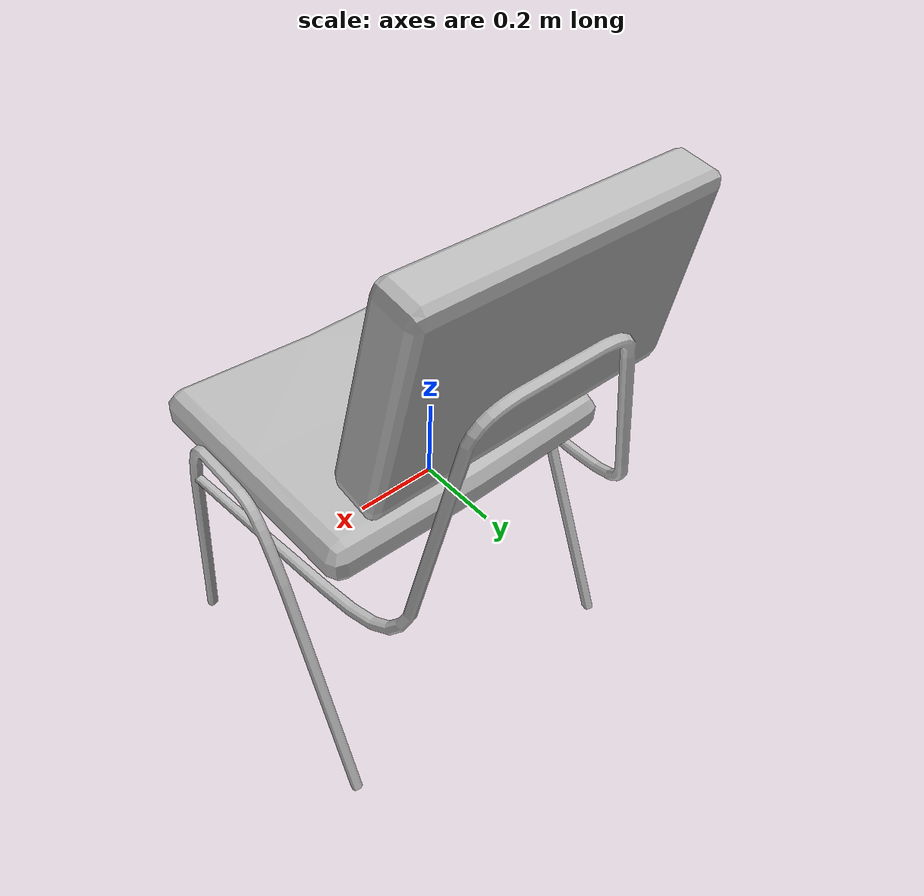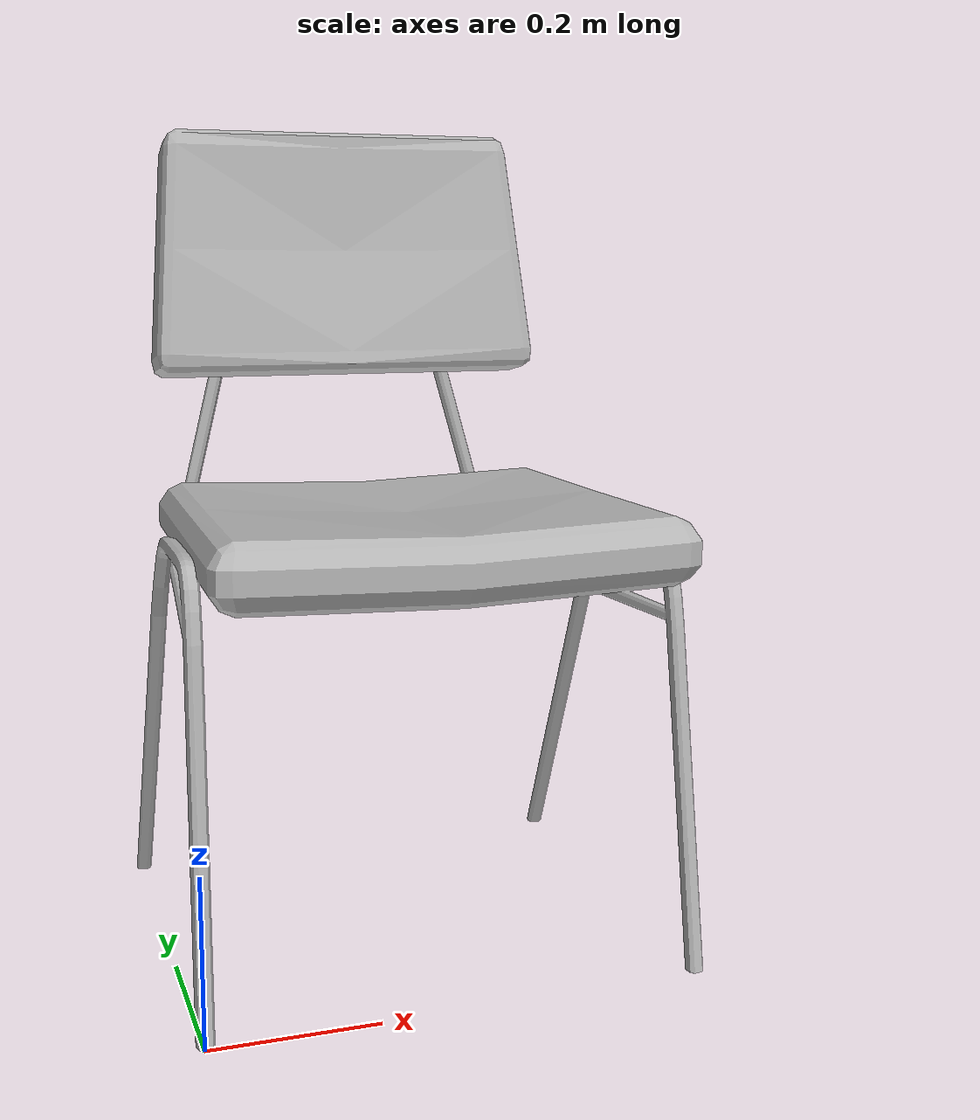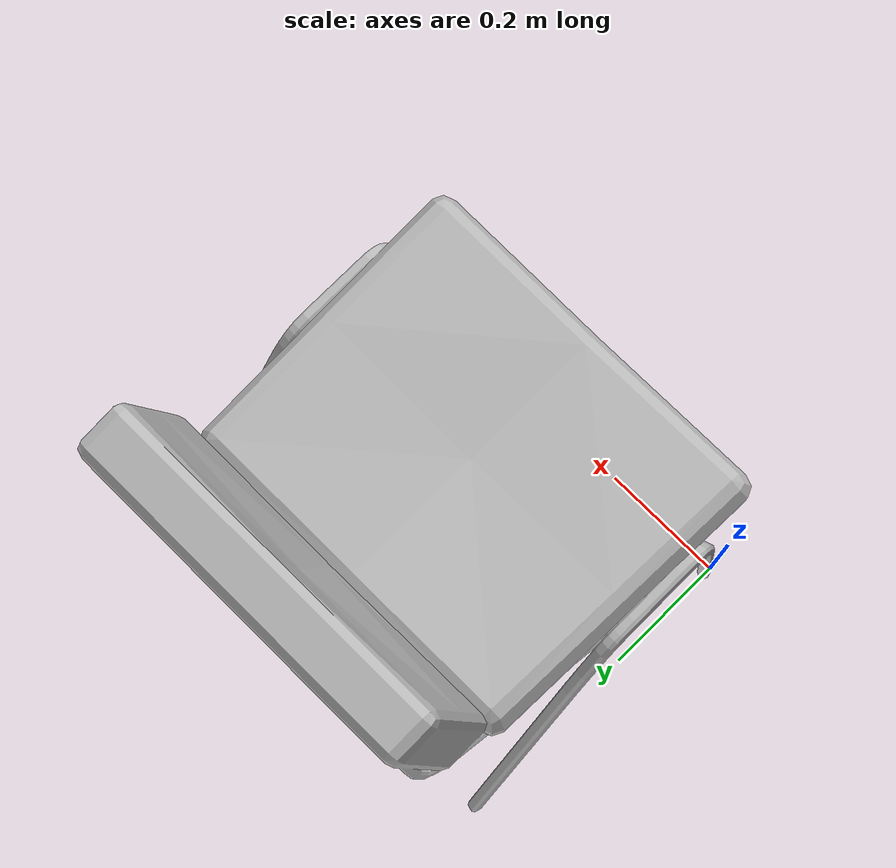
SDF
<?xml version="1.0" ?>
<sdf version="1.6">
  <model name="gcs_chair">
    <static>true</static>
    <link name="base_link">
      <collision name="base_collision">
        <geometry>
          <mesh>
            <scale>1 1 1</scale>
            <uri>model://gcs_chair/meshes/gcs_chair.dae</uri>
          </mesh>
        </geometry>
        <surface>
          <contact>
            <ode/>
          </contact>
          <bounce/>
          <friction>
            <ode>
              <mu>1.0</mu>
              <mu2>1.0</mu2>
            </ode>
          </friction>
        </surface>
      </collision>
      <visual name="base_visual">
        <geometry>
          <mesh>
            <scale>1 1 1</scale>
            <uri>model://gcs_chair/meshes/gcs_chair.dae</uri>
          </mesh>
        </geometry>
      </visual>
    </link>
  </model>
</sdf>
